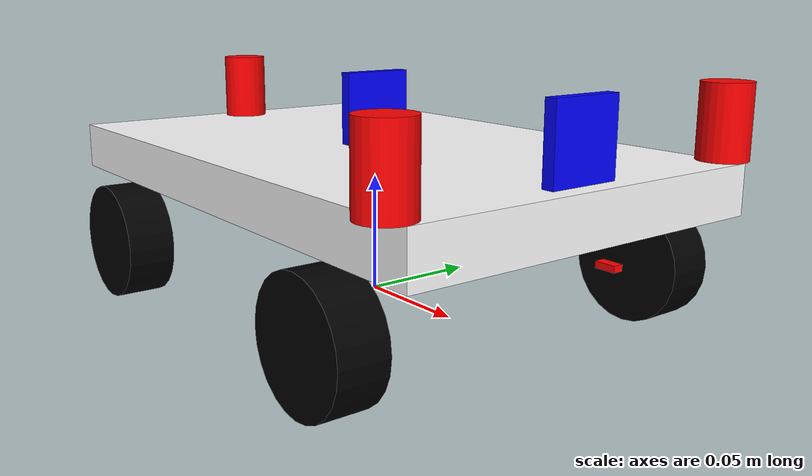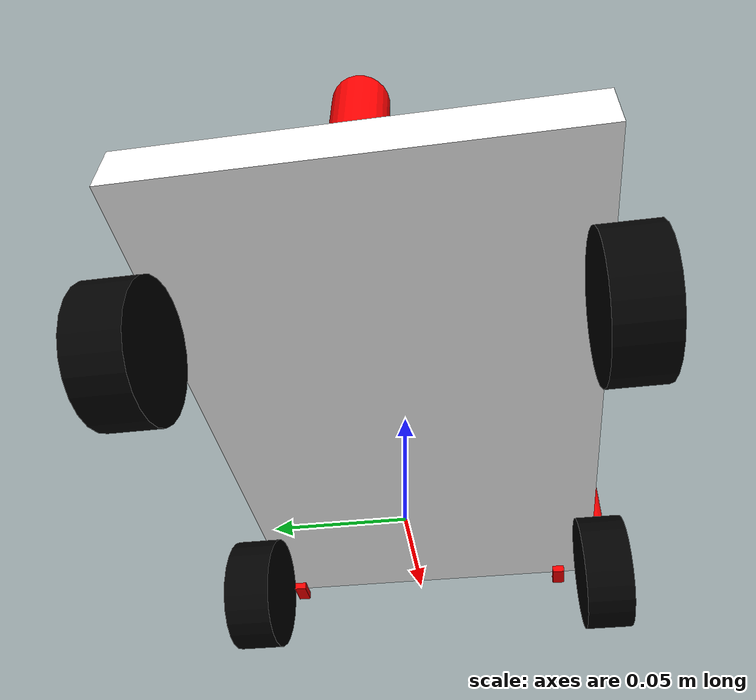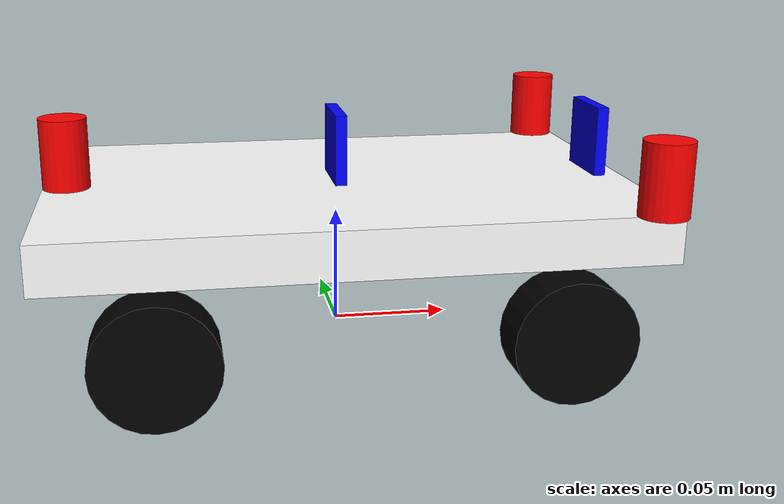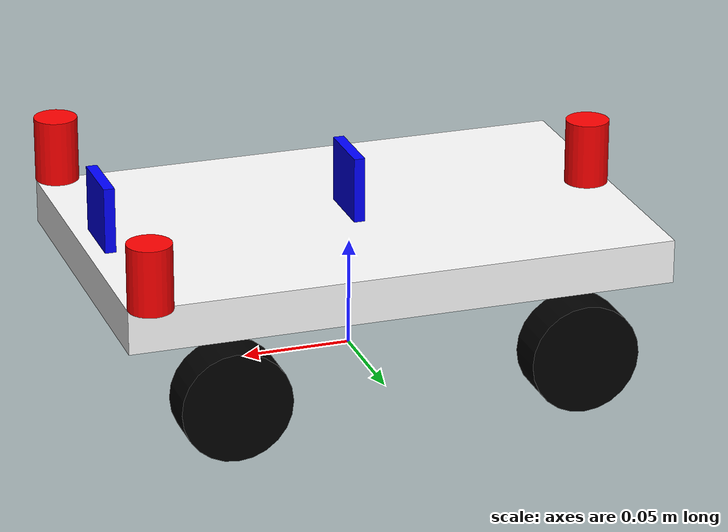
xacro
<?xml version="1.0" ?>
<robot name="test_robot" xmlns:xacro="http://www.ros.org/wiki/xacro">
    <!-- 添加机器人urdf -->
    <xacro:include filename="$(find test_robot_description)/urdf/test_robot_urdf.xacro"/>
    <!-- 添加gazebo属性 -->
    <xacro:include filename="$(find test_robot_description)/urdf/test_robot_materials.xacro"/>
    <!-- 添加gazebo传感器 -->
    <xacro:include filename="$(find test_robot_description)/urdf/test_robot_sensors.xacro"/>
    <!-- 添加gazebo控制器 -->
    <xacro:include filename="$(find test_robot_description)/urdf/test_robot_trans.xacro"/>
</robot>

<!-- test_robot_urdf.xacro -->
<robot name="test_robot_body" xmlns:xacro="http://wiki.ros.org/xacro">
    <!-- 圆柱体惯性计算 -->
    <xacro:macro name="cylinder_inertial_matrix" params="m r h">
        <inertial>
            <mass value="${m}"/>
            <inertia ixx="${m*(3*r*r+h*h)/12}" ixy="0" ixz="0"
                     iyy="${m*(3*r*r+h*h)/12}" iyz="0"
                     izz="${m*r*r/2}"/>
        </inertial>
    </xacro:macro>

    <!-- 立方体惯性计算 -->
    <xacro:macro name="Box_inertial_matrix" params="m l w h">
        <inertial>
            <mass value="${m}"/>
            <inertia ixx="${m*(h*h + l*l)/12}" ixy="0" ixz="0"
                     iyy="${m*(w*w + l*l)/12}" iyz="0"
                     izz="${m*(w*w + h*h)/12}"/>
        </inertial>
    </xacro:macro>

    <!-- 车轮重量 -->
    <xacro:property name="wheel_mass" value="0.01" />

    <!-- dummy base -->
    <link name="base"/>
    <!-- 车架 -->
    <link name="base_link">
        <visual>
            <origin rpy="0 0 0" xyz="0 0 0.055"/>
            <geometry>
                <box size="0.25 0.16 0.02"/>
            </geometry>
            <material name="white">
                <color rgba="1 1 1 1"/>
            </material>
        </visual>
        <collision>
            <origin rpy="0 0 0" xyz="0 0 0.055"/>
            <geometry>
                <box size="0.25 0.16 0.05"/>
            </geometry>
        </collision>
        <xacro:Box_inertial_matrix m="1" l="0.25" w="0.16" h="0.02"/>
    </link>
    <!-- 左桥 -->
    <link name="left_bridge">
        <visual>
            <origin rpy="0 0 0" xyz="0 0 0"/>
            <geometry>
                <box size="0.005 0.01 0.003"/>
            </geometry>
            <material name="red">
                <color rgba="1 0 0 1"/>
            </material>
        </visual>
        <collision>
            <origin rpy="0 0 0" xyz="0 0 0"/>
            <geometry>
                <box size="0.005 0.01 0.003"/>
            </geometry>
        </collision>
        <xacro:Box_inertial_matrix m="0.1" l="0.005" w="0.01" h="0.003"/>
    </link>
    <!-- 左前轮 -->
    <link name="left_front_wheel">
        <visual>
            <origin rpy="0 0 0" xyz="0 0 0"/>
            <geometry>
                <cylinder length="0.02" radius="0.025"/>
            </geometry>
            <material name="black">
                <color rgba="0 0 0 1"/>
            </material>
        </visual>
        <collision>
            <origin rpy="0 0 0" xyz="0 0 0"/>
            <geometry>
                <cylinder length="0.02" radius="0.025"/>
            </geometry>
        </collision>
        <xacro:cylinder_inertial_matrix m="${wheel_mass}" r="0.025" h="0.02"/>
    </link>
    <!-- 右桥 -->
    <link name="right_bridge">
        <visual>
            <origin rpy="0 0 0" xyz="0 0 0"/>
            <geometry>
                <box size="0.005 0.01 0.003"/>
            </geometry>
            <material name="red">
                <color rgba="1 0 0 1"/>
            </material>
        </visual>
        <collision>
            <origin rpy="0 0 0" xyz="0 0 0"/>
            <geometry>
                <box size="0.005 0.01 0.003"/>
            </geometry>
        </collision>
        <xacro:Box_inertial_matrix m="0.1" l="0.005" w="0.01" h="0.003"/>
    </link>
    <!-- 右前轮 -->
    <link name="right_front_wheel">
        <visual>
            <origin rpy="0 0 0" xyz="0 0 0"/>
            <geometry>
                <cylinder length="0.02" radius="0.025"/>
            </geometry>
            <material name="black">
                <color rgba="0 0 0 1"/>
            </material>
        </visual>
        <collision>
            <origin rpy="0 0 0" xyz="0 0 0"/>
            <geometry>
                <cylinder length="0.02" radius="0.025"/>
            </geometry>
        </collision>
        <xacro:cylinder_inertial_matrix m="${wheel_mass}" r="0.025" h="0.02"/>
    </link>
    <!-- 左后轮 -->
    <link name="left_back_wheel">
        <visual>
            <origin rpy="0 0 0" xyz="0 0 0"/>
            <geometry>
                <cylinder length="0.02" radius="0.025"/>
            </geometry>
            <material name="black">
                <color rgba="0 0 0 1"/>
            </material>
        </visual>
        <collision>
            <origin rpy="0 0 0" xyz="0 0 0"/>
            <geometry>
                <cylinder length="0.02" radius="0.025"/>
            </geometry>
        </collision>
        <xacro:cylinder_inertial_matrix m="${wheel_mass}" r="0.025" h="0.02"/>
    </link>
    <!-- 右后轮 -->
    <link name="right_back_wheel">
        <visual>
            <origin rpy="0 0 0" xyz="0 0 0"/>
            <geometry>
                <cylinder length="0.02" radius="0.025"/>
            </geometry>
            <material name="black">
                <color rgba="0 0 0 1"/>
            </material>
        </visual>
        <collision>
            <origin rpy="0 0 0" xyz="0 0 0"/>
            <geometry>
                <cylinder length="0.02" radius="0.025"/>
            </geometry>
        </collision>
        <xacro:cylinder_inertial_matrix m="${wheel_mass}" r="0.025" h="0.02"/>
    </link>
    <!-- RGB相机 -->
    <link name="camera">
        <visual>
            <origin rpy="0 0 0" xyz="0 0 0"/>
            <geometry>
                <box size=".005 .03 .03"/>
            </geometry>
            <material name="blue">
                <color rgba="0 0 1 1"/>
            </material>
        </visual>
        <collision>
            <origin rpy="0 0 0" xyz="0 0 0"/>
            <geometry>
                <box size=".005 .03 .03"/>
            </geometry>
        </collision>
        <xacro:Box_inertial_matrix m="0.01" l="0.005" w="0.03" h="0.03"/>
    </link>

    <link name="imu">
        <visual>
            <origin rpy="0 0 0" xyz="0 0 0"/>
            <geometry>
                <box size=".005 .03 .03"/>
            </geometry>
            <material name="blue">
                <color rgba="0 0 1 1"/>
            </material>
        </visual>
        <collision>
            <origin rpy="0 0 0" xyz="0 0 0"/>
            <geometry>
                <box size=".005 .03 .03"/>
            </geometry>
        </collision>
        <xacro:Box_inertial_matrix m="0.01" l="0.005" w="0.03" h="0.03"/>
    </link>

    <!-- v16雷达 -->
    <link name="v16_laser">
        <visual>
            <origin rpy="0 0 0" xyz="0 0 0"/>
            <geometry>
                <cylinder radius="0.01" length="0.03"/>
            </geometry>
            <origin xyz="0.0 0.0 0.0" rpy="0.0 0.0 0.0"/>
            <material name="red">
                <color rgba="1 0 0 1"/>
            </material>
        </visual>
        <collision>
            <origin rpy="0 0 0" xyz="0 0 0"/>
            <geometry>
                <cylinder radius="0.01" length="0.03"/>
            </geometry>
        </collision>
        <xacro:cylinder_inertial_matrix m="0.01" r="0.01" h="0.03"/>
    </link>
    <!-- v3雷达1 -->
    <link name="v3_laser1">
        <visual>
            <origin rpy="0 0 0" xyz="0 0 0"/>
            <geometry>
                <cylinder radius="0.01" length="0.03"/>
            </geometry>
            <origin xyz="0.0 0.0 0.0" rpy="0.0 0.0 0.0"/>
            <material name="red">
                <color rgba="1 0 0 1"/>
            </material>
        </visual>
        <collision>
            <origin rpy="0 0 0" xyz="0 0 0"/>
            <geometry>
                <cylinder radius="0.01" length="0.03"/>
            </geometry>
        </collision>
        <xacro:cylinder_inertial_matrix m="0.01" r="0.01" h="0.03"/>
    </link>
    <!-- v3雷达2 -->
    <link name="v3_laser2">
        <visual>
            <origin rpy="0 0 0" xyz="0 0 0"/>
            <geometry>
                <cylinder radius="0.01" length="0.03"/>
            </geometry>
            <origin xyz="0.0 0.0 0.0" rpy="0.0 0.0 0.0"/>
            <material name="red">
                <color rgba="1 0 0 1"/>
            </material>
        </visual>
        <collision>
            <origin rpy="0 0 0" xyz="0 0 0"/>
            <geometry>
                <cylinder radius="0.01" length="0.03"/>
            </geometry>
        </collision>
        <xacro:cylinder_inertial_matrix m="0.1" r="0.01" h="0.03"/>
    </link>

    <!-- 设置base到车架的joint -->
    <joint name="base2base_link" type="fixed">
        <origin rpy="0 0 0" xyz="0 0 0"/>
        <parent link="base"/>
        <child link="base_link"/>
    </joint>
    <!-- 设置车架到左桥的joint -->
    <joint name="base_link2left_bridge" type="revolute">
        <parent link="base_link"/>
        <child link="left_bridge"/>
        <origin rpy="0 0 1.57075" xyz="0.080 0.060 0.018"/>
        <axis xyz="0 0 -1"/>
        <limit effort="2.5" lower="-0.785" upper="0.785" velocity="0.1"/>
    </joint>
    <!-- 设置左桥到左前轮的joint -->
    <joint name="left_bridge2wheel" type="continuous">
        <axis xyz="0 0 1"/>
        <parent link="left_bridge"/>
        <child link="left_front_wheel"/>
        <origin rpy="0 1.57075 0" xyz="0.02 0 0"/>
        <limit effort="100" velocity="100"/>
    </joint>
    <!-- 设置车架到右桥的joint -->
    <joint name="base_link2right_bridge" type="revolute">
        <parent link="base_link"/>
        <child link="right_bridge"/>
        <origin rpy="0 0 1.57075" xyz="0.080 -0.060 0.018"/>
        <axis xyz="0 0 -1"/>
        <limit effort="2.5" lower="-0.785" upper="0.785" velocity="0.1"/>
    </joint>
    <!-- 设置右桥到右前轮的joint -->
    <joint name="right_bridge2wheel" type="continuous">
        <axis xyz="0 0 1"/>
        <parent link="right_bridge"/>
        <child link="right_front_wheel"/>
        <origin rpy="0 1.57075 0" xyz="-0.02 0 0"/>
        <limit effort="100" velocity="100"/>
    </joint>
    <!-- 设置车架到左后轮的joint -->
    <joint name="base_link2left_back_wheel" type="continuous">
        <axis xyz="0 0 1"/>
        <parent link="base_link"/>
        <child link="left_back_wheel"/>
        <origin rpy="0 1.57075 1.57075" xyz="-0.08 0.08 0.018"/>
        <limit effort="100" velocity="100"/>
    </joint>
    <!-- 设置车架到右后轮的joint -->
    <joint name="base_link2right_back_wheel" type="continuous">
        <axis xyz="0 0 1"/>
        <parent link="base_link"/>
        <child link="right_back_wheel"/>
        <origin rpy="0 1.57075 1.57075" xyz="-0.08 -0.08 0.018"/>
        <limit effort="100" velocity="100"/>
    </joint>
    <!-- 设置base_link到RGB相机的joint -->
    <joint name="base_link2camera" type="fixed">
        <parent link="base_link"/>
        <child link="camera"/>
        <origin xyz="0.115 0 0.08"/>
    </joint>

    <joint name="base_link2imu" type="fixed">
        <parent link="base_link"/>
        <child link="imu"/>
        <origin xyz="0.0 0 0.08"/>
    </joint>
    <!-- 设置base_link到v16雷达的joint -->
    <joint name="base_link2v16_laser" type="fixed">
        <parent link="base_link"/>
        <child link="v16_laser"/>
        <origin xyz="-0.115 0 0.08"/>
    </joint>
    <!-- 设置base_link到v3雷达1的joint -->
    <joint name="base_link2v3_laser1" type="fixed">
        <parent link="base_link"/>
        <child link="v3_laser1"/>
        <origin xyz="0.115 0.08 0.08"/>
    </joint>
    <!-- 设置base_link到v3雷达2的joint -->
    <joint name="base_link2v3_laser2" type="fixed">
        <parent link="base_link"/>
        <child link="v3_laser2"/>
        <origin xyz="0.115 -0.08 0.08"/>
    </joint>
</robot>

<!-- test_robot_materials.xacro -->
<robot xmlns:xacro="http://www.ros.org/wiki/xacro" >
    <xacro:property name="body_color" value="Gazebo/White" />
    <xacro:property name="bridge_color" value="Gazebo/Red" />
    <xacro:property name="wheel_color" value="Gazebo/Grey" />
    <xacro:property name="camera_color" value="Gazebo/Blue" />
    <xacro:property name="laser_color" value="Gazebo/Red" />
    <xacro:property name="wheel_mu1" value="0.8" />
    <xacro:property name="wheel_mu2" value="0.8" />

    <gazebo reference="base_link">
        <material>${body_color}</material>
        <mu1>${wheel_mu1}</mu1>
		<mu2>${wheel_mu2}</mu2>
    </gazebo>

    <gazebo reference="left_bridge">
        <material>${bridge_color}</material>
        <mu1>${wheel_mu1}</mu1>
		<mu2>${wheel_mu2}</mu2>
    </gazebo>

    <gazebo reference="left_front_wheel">
        <material>${wheel_color}</material>
        <mu1>${wheel_mu1}</mu1>
		<mu2>${wheel_mu2}</mu2>
		<kp>100000</kp>
		<kd>1</kd>
		<minDepth>0.001</minDepth>
		<maxVel>100</maxVel>
    </gazebo>
    <gazebo reference="right_bridge">
        <material>${bridge_color}</material>
        <mu1>${wheel_mu1}</mu1>
		<mu2>${wheel_mu2}</mu2>
    </gazebo>

    <gazebo reference="right_front_wheel">
        <material>${wheel_color}</material>
        <mu1>${wheel_mu1}</mu1>
		<mu2>${wheel_mu2}</mu2>
		<kp>100000</kp>
		<kd>1</kd>
		<minDepth>0.001</minDepth>
		<maxVel>100</maxVel>
    </gazebo>

    <gazebo reference="left_back_wheel">
        <material>${wheel_color}</material>
        <mu1>${wheel_mu1}</mu1>
		<mu2>${wheel_mu2}</mu2>
		<kp>100000</kp>
		<kd>1</kd>
		<minDepth>0.001</minDepth>
		<maxVel>100</maxVel>
    </gazebo>

    <gazebo reference="right_back_wheel">
        <material>${wheel_color}</material>
        <mu1>${wheel_mu1}</mu1>
		<mu2>${wheel_mu2}</mu2>
		<kp>100000</kp>
		<kd>1</kd>
		<minDepth>0.001</minDepth>
		<maxVel>100</maxVel>
    </gazebo>

    <gazebo reference="camera">
        <material>${camera_color}</material>
    </gazebo>

    <gazebo reference="imu">
        <material>${camera_color}</material>
    </gazebo>

    <gazebo reference="v16_laser">
        <material>${laser_color}</material>
    </gazebo>

    <gazebo reference="v3_laser1">
        <material>${laser_color}</material>
    </gazebo>

    <gazebo reference="v3_laser2">
        <material>${laser_color}</material>
    </gazebo>
</robot>
